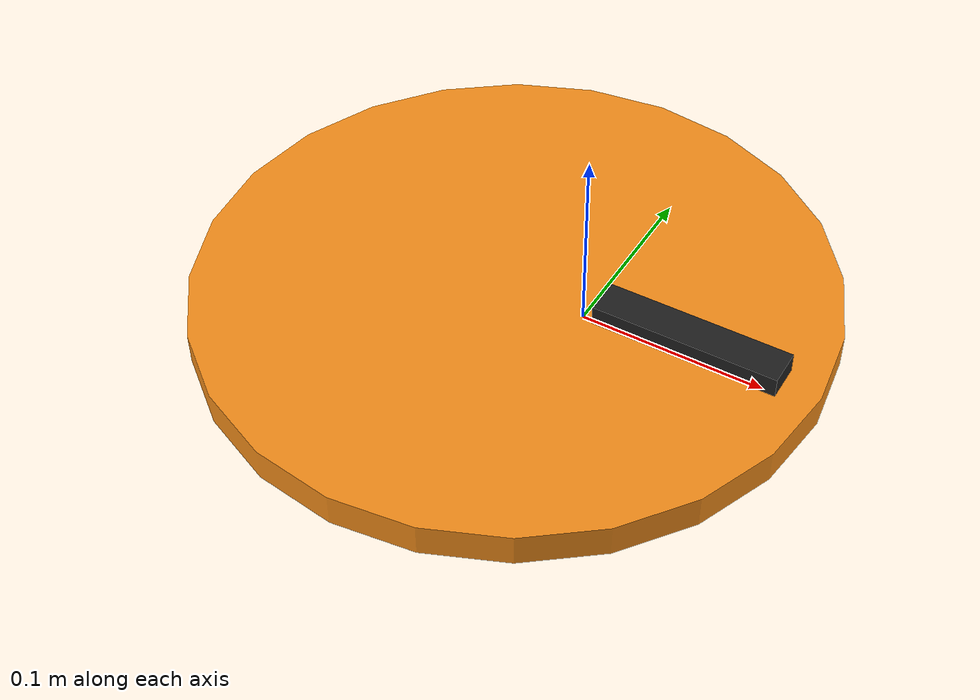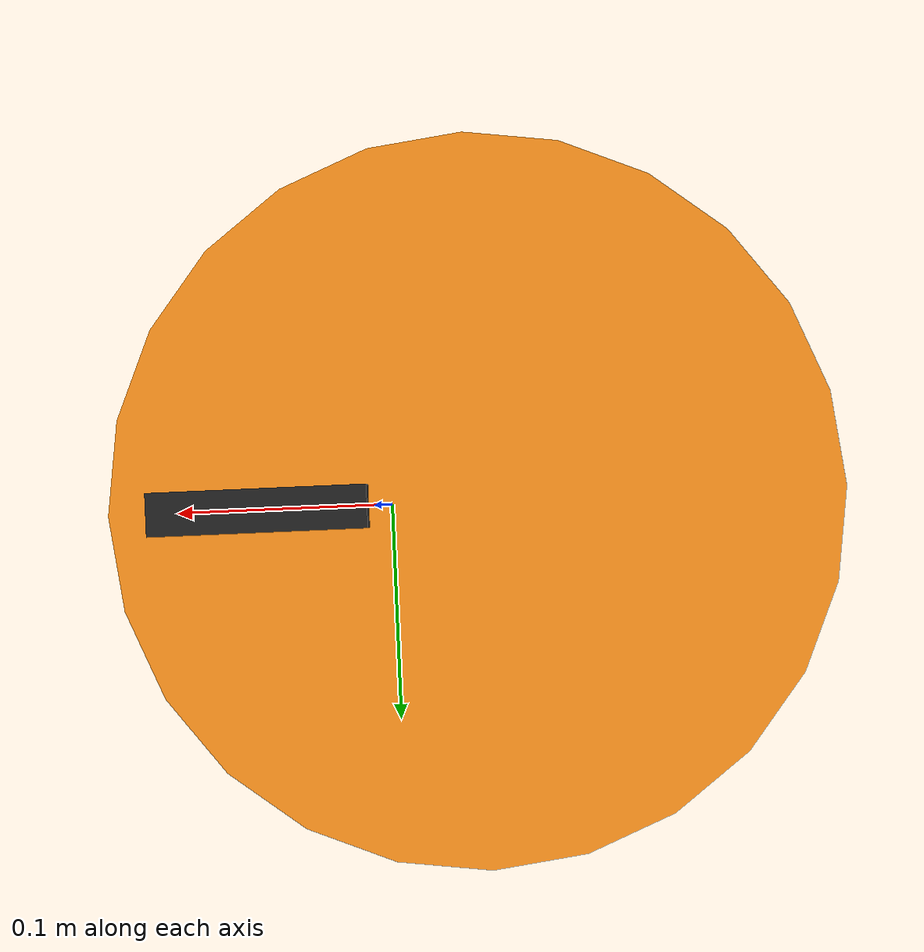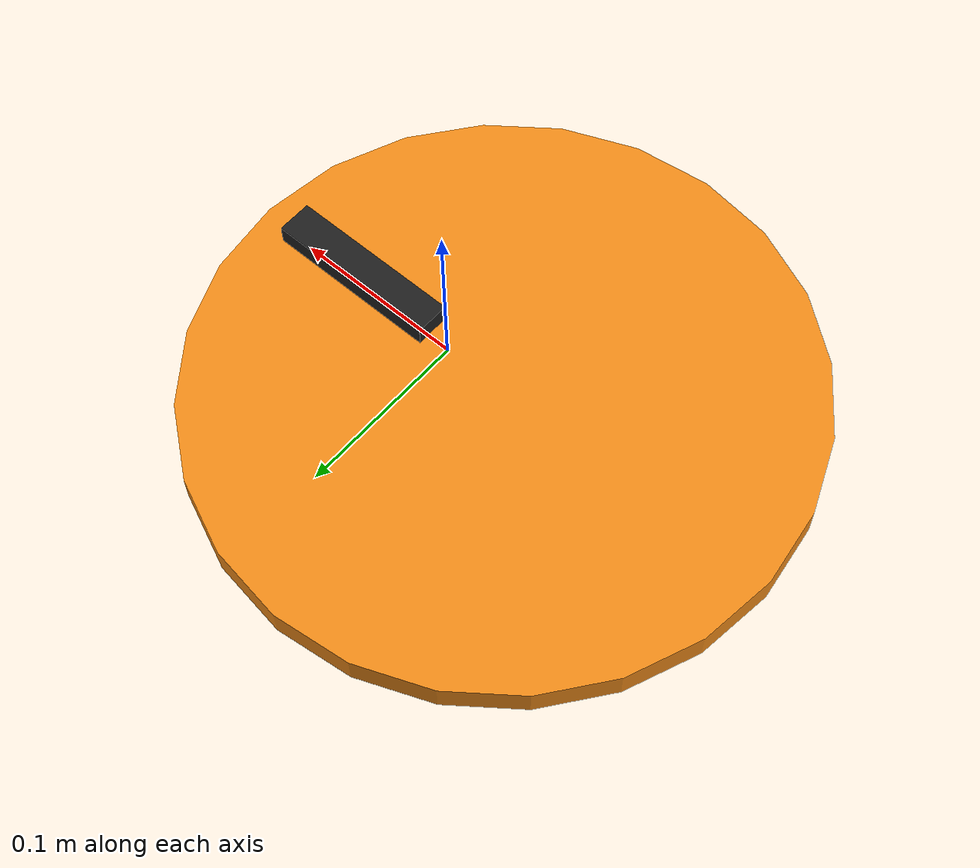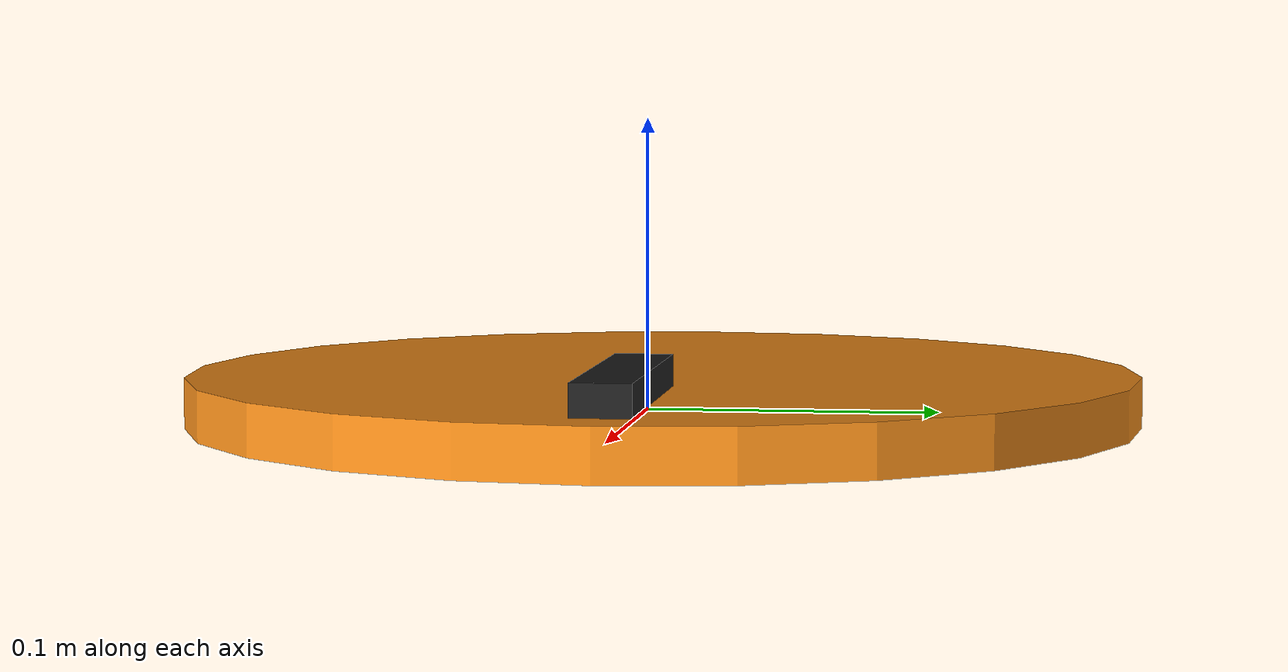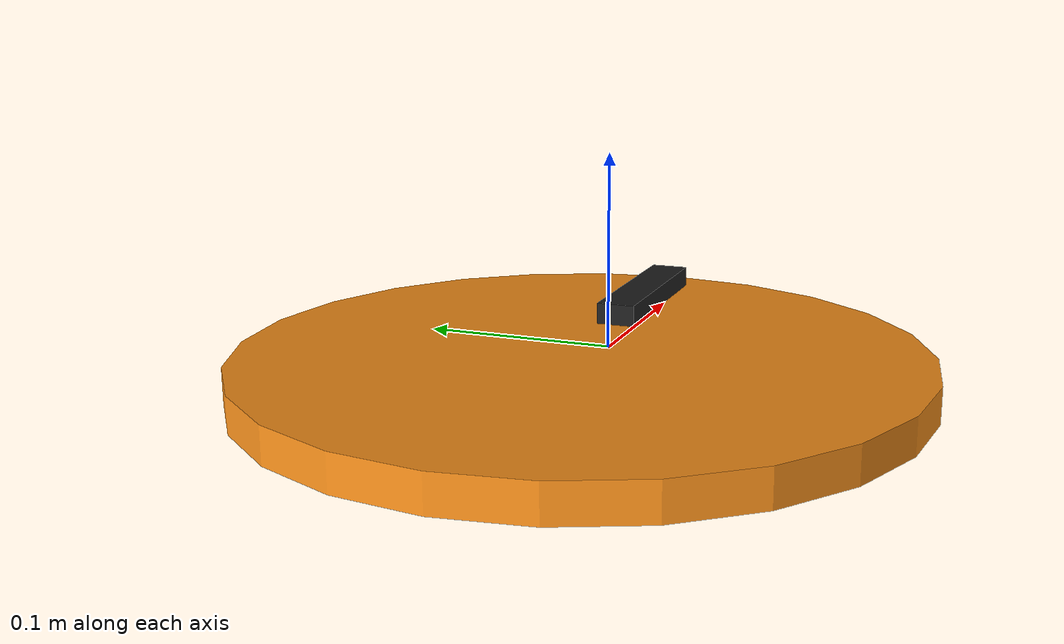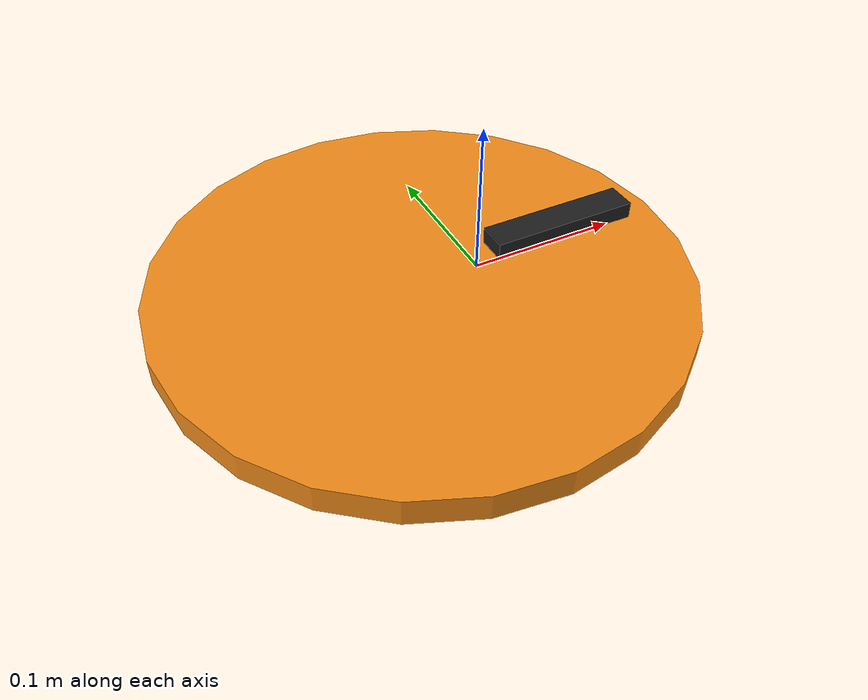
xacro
<?xml version="1.0" ?>
<robot name="hcr" xmlns:xacro="http://ros.org/wiki/xacro">
  <xacro:include filename="$(find hcr_description)/urdf/common_properties.xacro"/>

  <link name="base_footprint">
    <visual>
      <origin xyz="-0.04 0 0" rpy="0 0 0"/>
      <geometry>
        <cylinder length="0.018" radius="0.17"/>
      </geometry>
      <material name="orange"/>
    </visual>
  </link>

  <joint name="base_joint" type="fixed">
    <parent link="base_footprint"/>
    <child link="base_link" />
    <origin xyz="0 0 0.010" rpy="0 0 0"/>
  </joint>

  <link name="base_link">
    <visual>
      <origin xyz="0.06 0 0" rpy="0 0 0"/>
      <geometry>
        <box size="0.10 0.020 0.020"/>
      </geometry>
      <material name="light_black"/>
    </visual>
    <collision>
      <origin xyz="-0.064 0 0.048" rpy="0 0 0"/>
      <geometry>
        <box size="0.265 0.265 0.089"/>
      </geometry>
    </collision>
    <inertial>
      <origin xyz="-0.064 0 0" rpy="0 0 0"/>
      <mass value="1"/>
      <inertia ixx="0.01" ixy="0.0" ixz="0.0"
               iyy="0.01" iyz="0.0"
               izz="0.01" />
    </inertial>
  </link>

</robot>
